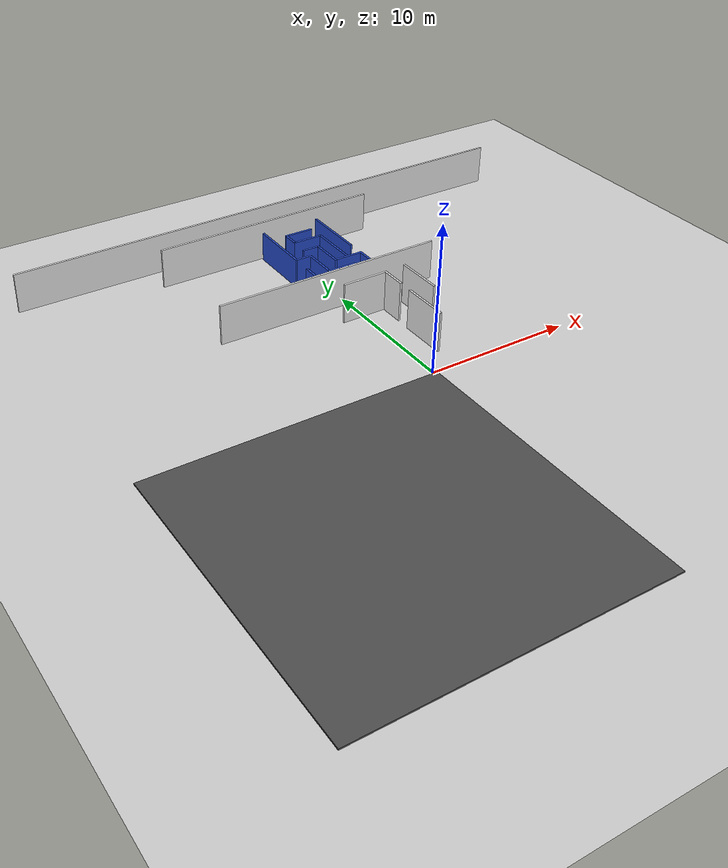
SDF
<sdf version="1.7">
 <world name="default">
  <model name="ground_plane">
   <static>1</static>
   <link name="link">
    <collision name="collision">
     <geometry><plane><normal>0 0 1</normal><size>100 100</size></plane></geometry>
     <surface><friction><ode><mu>100</mu><mu2>50</mu2></ode></friction></surface>
    </collision>
    <visual name="visual">
     <cast_shadows>0</cast_shadows>
     <geometry><plane><normal>0 0 1</normal><size>100 100</size></plane></geometry>
     <material>
      <script><uri>file://media/materials/scripts/gazebo.material</uri><name>Gazebo/Grey</name></script>
     </material>
    </visual>
    <velocity_decay><linear>0</linear><angular>0</angular></velocity_decay>
   </link>
  </model>
  <model name="asphalt_plane">
   <static>1</static>
   <link name="link">
    <collision name="collision"><geometry><box><size>20 20 0.1</size></box></geometry></collision>
    <visual name="visual">
     <cast_shadows>0</cast_shadows>
     <geometry><box><size>20 20 0.1</size></box></geometry>
     <material>
      <script>
       <uri>model://asphalt_plane/materials/scripts</uri>
       <uri>model://asphalt_plane/materials/textures</uri>
       <name>vrc/asphalt</name>
      </script>
     </material>
    </visual>
   </link>
   <pose>-9.73878 -10.1135 0 0 -0 0</pose>
  </model>
  <model name="white_wall_outside">
   <link name="link">
    <inertial>
     <mass>1</mass>
     <inertia>
      <ixx>0.166667</ixx>
      <ixy>0</ixy>
      <ixz>0</ixz>
      <iyy>0.166667</iyy>
      <iyz>0</iyz>
      <izz>0.166667</izz>
     </inertia>
    </inertial>
    <visual name="visual">
     <geometry><box><size>37.6355 0.139088 2.78993</size></box></geometry>
     <material>
      <script><name>Gazebo/White</name><uri>file://media/materials/scripts/gazebo.material</uri></script>
      <shader type="vertex"><normal_map>__default__</normal_map></shader>
      <ambient>1 1 1 1</ambient>
      <diffuse>1 1 1 1</diffuse>
      <specular>0 0 0 1</specular>
      <emissive>0 0 0 1</emissive>
     </material>
    </visual>
    <collision name="collision">
     <geometry><box><size>37.6355 0.139088 2.78993</size></box></geometry>
     <surface>
      <friction>
       <ode><mu>1</mu><mu2>1</mu2><fdir1>0 0 0</fdir1><slip1>0</slip1><slip2>0</slip2></ode>
       <torsional>
        <coefficient>1</coefficient>
        <patch_radius>0</patch_radius>
        <surface_radius>0</surface_radius>
        <use_patch_radius>1</use_patch_radius>
        <ode><slip>0</slip></ode>
       </torsional>
      </friction>
      <bounce><restitution_coefficient>0</restitution_coefficient><threshold>1e+06</threshold></bounce>
      <contact>
       <collide_without_contact>0</collide_without_contact>
       <collide_without_contact_bitmask>1</collide_without_contact_bitmask>
       <collide_bitmask>1</collide_bitmask>
       <ode>
        <soft_cfm>0</soft_cfm>
        <soft_erp>0.2</soft_erp>
        <kp>1e+13</kp>
        <kd>1</kd>
        <max_vel>0.01</max_vel>
        <min_depth>0</min_depth>
       </ode>
       <bullet>
        <split_impulse>1</split_impulse>
        <split_impulse_penetration_threshold>-0.01</split_impulse_penetration_threshold>
        <soft_cfm>0</soft_cfm>
        <soft_erp>0.2</soft_erp>
        <kp>1e+13</kp>
        <kd>1</kd>
       </bullet>
      </contact>
     </surface>
    </collision>
   </link>
   <static>1</static>
   <pose>0.019671 19.5408 1.44001 -1e-06 4e-06 -1.6e-05</pose>
  </model>
  <model name="white_wall17_clone_clone">
   <link name="link">
    <inertial>
     <mass>1</mass>
     <inertia>
      <ixx>0.166667</ixx>
      <ixy>0</ixy>
      <ixz>0</ixz>
      <iyy>0.166667</iyy>
      <iyz>0</iyz>
      <izz>0.166667</izz>
     </inertia>
    </inertial>
    <visual name="visual">
     <geometry><box><size>16.0161 0.139088 2.78993</size></box></geometry>
     <material>
      <script><name>Gazebo/White</name><uri>file://media/materials/scripts/gazebo.material</uri></script>
      <shader type="vertex"><normal_map>__default__</normal_map></shader>
      <ambient>1 1 1 1</ambient>
      <diffuse>1 1 1 1</diffuse>
      <specular>0 0 0 1</specular>
      <emissive>0 0 0 1</emissive>
     </material>
    </visual>
    <collision name="collision">
     <geometry><box><size>16.0161 0.139088 2.78993</size></box></geometry>
     <surface>
      <friction>
       <ode><mu>1</mu><mu2>1</mu2><fdir1>0 0 0</fdir1><slip1>0</slip1><slip2>0</slip2></ode>
       <torsional>
        <coefficient>1</coefficient>
        <patch_radius>0</patch_radius>
        <surface_radius>0</surface_radius>
        <use_patch_radius>1</use_patch_radius>
        <ode><slip>0</slip></ode>
       </torsional>
      </friction>
      <bounce><restitution_coefficient>0</restitution_coefficient><threshold>1e+06</threshold></bounce>
      <contact>
       <collide_without_contact>0</collide_without_contact>
       <collide_without_contact_bitmask>1</collide_without_contact_bitmask>
       <collide_bitmask>1</collide_bitmask>
       <ode>
        <soft_cfm>0</soft_cfm>
        <soft_erp>0.2</soft_erp>
        <kp>1e+13</kp>
        <kd>1</kd>
        <max_vel>0.01</max_vel>
        <min_depth>0</min_depth>
       </ode>
       <bullet>
        <split_impulse>1</split_impulse>
        <split_impulse_penetration_threshold>-0.01</split_impulse_penetration_threshold>
        <soft_cfm>0</soft_cfm>
        <soft_erp>0.2</soft_erp>
        <kp>1e+13</kp>
        <kd>1</kd>
       </bullet>
      </contact>
     </surface>
    </collision>
   </link>
   <static>1</static>
   <pose>-1.34784 17.535 1.43995 -1e-06 4e-06 -1.6e-05</pose>
  </model>
  <model name="white_wall17_clone_clone_clone">
   <link name="link">
    <inertial>
     <mass>1</mass>
     <inertia>
      <ixx>0.166667</ixx>
      <ixy>0</ixy>
      <ixz>0</ixz>
      <iyy>0.166667</iyy>
      <iyz>0</iyz>
      <izz>0.166667</izz>
     </inertia>
    </inertial>
    <visual name="visual">
     <geometry><box><size>16.0161 0.139088 2.78993</size></box></geometry>
     <material>
      <script><name>Gazebo/White</name><uri>file://media/materials/scripts/gazebo.material</uri></script>
      <shader type="vertex"><normal_map>__default__</normal_map></shader>
      <ambient>1 1 1 1</ambient>
      <diffuse>1 1 1 1</diffuse>
      <specular>0 0 0 1</specular>
      <emissive>0 0 0 1</emissive>
     </material>
    </visual>
    <collision name="collision">
     <geometry><box><size>16.0161 0.139088 2.78993</size></box></geometry>
     <surface>
      <friction>
       <ode><mu>1</mu><mu2>1</mu2><fdir1>0 0 0</fdir1><slip1>0</slip1><slip2>0</slip2></ode>
       <torsional>
        <coefficient>1</coefficient>
        <patch_radius>0</patch_radius>
        <surface_radius>0</surface_radius>
        <use_patch_radius>1</use_patch_radius>
        <ode><slip>0</slip></ode>
       </torsional>
      </friction>
      <bounce><restitution_coefficient>0</restitution_coefficient><threshold>1e+06</threshold></bounce>
      <contact>
       <collide_without_contact>0</collide_without_contact>
       <collide_without_contact_bitmask>1</collide_without_contact_bitmask>
       <collide_bitmask>1</collide_bitmask>
       <ode>
        <soft_cfm>0</soft_cfm>
        <soft_erp>0.2</soft_erp>
        <kp>1e+13</kp>
        <kd>1</kd>
        <max_vel>0.01</max_vel>
        <min_depth>0</min_depth>
       </ode>
       <bullet>
        <split_impulse>1</split_impulse>
        <split_impulse_penetration_threshold>-0.01</split_impulse_penetration_threshold>
        <soft_cfm>0</soft_cfm>
        <soft_erp>0.2</soft_erp>
        <kp>1e+13</kp>
        <kd>1</kd>
       </bullet>
      </contact>
     </surface>
    </collision>
   </link>
   <static>1</static>
   <pose>-1.39522 9.32901 1.43995 -1e-06 4e-06 -1.6e-05</pose>
  </model>
  <model name="white_wall2_clone_clone_clone_clone_clone_clone_clone">
   <link name="link">
    <inertial>
     <mass>1</mass>
     <inertia>
      <ixx>0.166667</ixx>
      <ixy>0</ixy>
      <ixz>0</ixz>
      <iyy>0.166667</iyy>
      <iyz>0</iyz>
      <izz>0.166667</izz>
     </inertia>
    </inertial>
    <visual name="visual">
     <geometry><box><size>3.22688 0.139088 2.78993</size></box></geometry>
     <material>
      <script><name>Gazebo/White</name><uri>file://media/materials/scripts/gazebo.material</uri></script>
      <shader type="vertex"><normal_map>__default__</normal_map></shader>
      <ambient>1 1 1 1</ambient>
      <diffuse>1 1 1 1</diffuse>
      <specular>0 0 0 1</specular>
      <emissive>0 0 0 1</emissive>
     </material>
    </visual>
    <collision name="collision">
     <geometry><box><size>3.22688 0.139088 2.78993</size></box></geometry>
     <surface>
      <friction>
       <ode><mu>1</mu><mu2>1</mu2><fdir1>0 0 0</fdir1><slip1>0</slip1><slip2>0</slip2></ode>
       <torsional>
        <coefficient>1</coefficient>
        <patch_radius>0</patch_radius>
        <surface_radius>0</surface_radius>
        <use_patch_radius>1</use_patch_radius>
        <ode><slip>0</slip></ode>
       </torsional>
      </friction>
      <bounce><restitution_coefficient>0</restitution_coefficient><threshold>1e+06</threshold></bounce>
      <contact>
       <collide_without_contact>0</collide_without_contact>
       <collide_without_contact_bitmask>1</collide_without_contact_bitmask>
       <collide_bitmask>1</collide_bitmask>
       <ode>
        <soft_cfm>0</soft_cfm>
        <soft_erp>0.2</soft_erp>
        <kp>1e+13</kp>
        <kd>1</kd>
        <max_vel>0.01</max_vel>
        <min_depth>0</min_depth>
       </ode>
       <bullet>
        <split_impulse>1</split_impulse>
        <split_impulse_penetration_threshold>-0.01</split_impulse_penetration_threshold>
        <soft_cfm>0</soft_cfm>
        <soft_erp>0.2</soft_erp>
        <kp>1e+13</kp>
        <kd>1</kd>
       </bullet>
      </contact>
     </surface>
    </collision>
   </link>
   <static>1</static>
   <pose>0.098009 7.51806 1.43995 -1e-06 4e-06 0.004652</pose>
  </model>
  <model name="white_wall3_clone_clone_2_clone_clone_clone">
   <link name="link">
    <inertial>
     <mass>1</mass>
     <inertia>
      <ixx>0.166667</ixx>
      <ixy>0</ixy>
      <ixz>0</ixz>
      <iyy>0.166667</iyy>
      <iyz>0</iyz>
      <izz>0.166667</izz>
     </inertia>
    </inertial>
    <visual name="visual">
     <geometry><box><size>1.77743 0.139088 2.78993</size></box></geometry>
     <material>
      <script><name>Gazebo/White</name><uri>file://media/materials/scripts/gazebo.material</uri></script>
      <shader type="vertex"><normal_map>__default__</normal_map></shader>
      <ambient>1 1 1 1</ambient>
      <diffuse>1 1 1 1</diffuse>
      <specular>0 0 0 1</specular>
      <emissive>0 0 0 1</emissive>
     </material>
    </visual>
    <collision name="collision">
     <geometry><box><size>1.77743 0.139088 2.78993</size></box></geometry>
     <surface>
      <friction>
       <ode><mu>1</mu><mu2>1</mu2><fdir1>0 0 0</fdir1><slip1>0</slip1><slip2>0</slip2></ode>
       <torsional>
        <coefficient>1</coefficient>
        <patch_radius>0</patch_radius>
        <surface_radius>0</surface_radius>
        <use_patch_radius>1</use_patch_radius>
        <ode><slip>0</slip></ode>
       </torsional>
      </friction>
      <bounce><restitution_coefficient>0</restitution_coefficient><threshold>1e+06</threshold></bounce>
      <contact>
       <collide_without_contact>0</collide_without_contact>
       <collide_without_contact_bitmask>1</collide_without_contact_bitmask>
       <collide_bitmask>1</collide_bitmask>
       <ode>
        <soft_cfm>0</soft_cfm>
        <soft_erp>0.2</soft_erp>
        <kp>1e+13</kp>
        <kd>1</kd>
        <max_vel>0.01</max_vel>
        <min_depth>0</min_depth>
       </ode>
       <bullet>
        <split_impulse>1</split_impulse>
        <split_impulse_penetration_threshold>-0.01</split_impulse_penetration_threshold>
        <soft_cfm>0</soft_cfm>
        <soft_erp>0.2</soft_erp>
        <kp>1e+13</kp>
        <kd>1</kd>
       </bullet>
      </contact>
     </surface>
    </collision>
   </link>
   <static>1</static>
   <pose>1.65799 6.7128 1.43995 4e-06 1e-06 1.56402</pose>
  </model>
  <model name="white_wall2_clone_clone_clone_clone_0">
   <link name="link">
    <inertial>
     <mass>1</mass>
     <inertia>
      <ixx>0.166667</ixx>
      <ixy>0</ixy>
      <ixz>0</ixz>
      <iyy>0.166667</iyy>
      <iyz>0</iyz>
      <izz>0.166667</izz>
     </inertia>
    </inertial>
    <visual name="visual">
     <geometry><box><size>3.22688 0.139088 2.78993</size></box></geometry>
     <material>
      <script><name>Gazebo/White</name><uri>file://media/materials/scripts/gazebo.material</uri></script>
      <shader type="vertex"><normal_map>__default__</normal_map></shader>
      <ambient>1 1 1 1</ambient>
      <diffuse>1 1 1 1</diffuse>
      <specular>0 0 0 1</specular>
      <emissive>0 0 0 1</emissive>
     </material>
    </visual>
    <collision name="collision">
     <geometry><box><size>3.22688 0.139088 2.78993</size></box></geometry>
     <surface>
      <friction>
       <ode><mu>1</mu><mu2>1</mu2><fdir1>0 0 0</fdir1><slip1>0</slip1><slip2>0</slip2></ode>
       <torsional>
        <coefficient>1</coefficient>
        <patch_radius>0</patch_radius>
        <surface_radius>0</surface_radius>
        <use_patch_radius>1</use_patch_radius>
        <ode><slip>0</slip></ode>
       </torsional>
      </friction>
      <bounce><restitution_coefficient>0</restitution_coefficient><threshold>1e+06</threshold></bounce>
      <contact>
       <collide_without_contact>0</collide_without_contact>
       <collide_without_contact_bitmask>1</collide_without_contact_bitmask>
       <collide_bitmask>1</collide_bitmask>
       <ode>
        <soft_cfm>0</soft_cfm>
        <soft_erp>0.2</soft_erp>
        <kp>1e+13</kp>
        <kd>1</kd>
        <max_vel>0.01</max_vel>
        <min_depth>0</min_depth>
       </ode>
       <bullet>
        <split_impulse>1</split_impulse>
        <split_impulse_penetration_threshold>-0.01</split_impulse_penetration_threshold>
        <soft_cfm>0</soft_cfm>
        <soft_erp>0.2</soft_erp>
        <kp>1e+13</kp>
        <kd>1</kd>
       </bullet>
      </contact>
     </surface>
    </collision>
   </link>
   <static>1</static>
   <pose>1.63251 3.24781 1.43995 4e-06 1e-06 1.57814</pose>
  </model>
  <model name="white_wall2_clone_clone_clone_clone_0_clone">
   <link name="link">
    <inertial>
     <mass>1</mass>
     <inertia>
      <ixx>0.166667</ixx>
      <ixy>0</ixy>
      <ixz>0</ixz>
      <iyy>0.166667</iyy>
      <iyz>0</iyz>
      <izz>0.166667</izz>
     </inertia>
    </inertial>
    <visual name="visual">
     <geometry><box><size>3.22688 0.139088 2.78993</size></box></geometry>
     <material>
      <script><name>Gazebo/White</name><uri>file://media/materials/scripts/gazebo.material</uri></script>
      <shader type="vertex"><normal_map>__default__</normal_map></shader>
      <ambient>1 1 1 1</ambient>
      <diffuse>1 1 1 1</diffuse>
      <specular>0 0 0 1</specular>
      <emissive>0 0 0 1</emissive>
     </material>
    </visual>
    <collision name="collision">
     <geometry><box><size>3.22688 0.139088 2.78993</size></box></geometry>
     <surface>
      <friction>
       <ode><mu>1</mu><mu2>1</mu2><fdir1>0 0 0</fdir1><slip1>0</slip1><slip2>0</slip2></ode>
       <torsional>
        <coefficient>1</coefficient>
        <patch_radius>0</patch_radius>
        <surface_radius>0</surface_radius>
        <use_patch_radius>1</use_patch_radius>
        <ode><slip>0</slip></ode>
       </torsional>
      </friction>
      <bounce><restitution_coefficient>0</restitution_coefficient><threshold>1e+06</threshold></bounce>
      <contact>
       <collide_without_contact>0</collide_without_contact>
       <collide_without_contact_bitmask>1</collide_without_contact_bitmask>
       <collide_bitmask>1</collide_bitmask>
       <ode>
        <soft_cfm>0</soft_cfm>
        <soft_erp>0.2</soft_erp>
        <kp>1e+13</kp>
        <kd>1</kd>
        <max_vel>0.01</max_vel>
        <min_depth>0</min_depth>
       </ode>
       <bullet>
        <split_impulse>1</split_impulse>
        <split_impulse_penetration_threshold>-0.01</split_impulse_penetration_threshold>
        <soft_cfm>0</soft_cfm>
        <soft_erp>0.2</soft_erp>
        <kp>1e+13</kp>
        <kd>1</kd>
       </bullet>
      </contact>
     </surface>
    </collision>
   </link>
   <static>1</static>
   <pose>3.21284 6.04856 1.43995 4e-06 1e-06 1.57814</pose>
  </model>
  <model name="blue_wall_10">
   <link name="link">
    <inertial>
     <mass>1.23974</mass>
     <inertia>
      <ixx>1.75708</ixx>
      <ixy>0</ixy>
      <ixz>0</ixz>
      <iyy>0.935051</iyy>
      <iyz>0</iyz>
      <izz>0.826375</izz>
     </inertia>
    </inertial>
    <visual name="visual">
     <geometry><box><size>0.145074 1.16671 3.00495</size></box></geometry>
     <material>
      <script><name>Gazebo/Blue</name><uri>file://media/materials/scripts/gazebo.material</uri></script>
      <shader type="vertex"><normal_map>__default__</normal_map></shader>
      <ambient>0 0 1 1</ambient>
      <diffuse>0 0 1 1</diffuse>
      <specular>0.1 0.1 0.1 1</specular>
      <emissive>0 0 0 1</emissive>
     </material>
    </visual>
    <collision name="collision">
     <geometry><box><size>0.145074 1.16671 3.00495</size></box></geometry>
     <surface>
      <friction>
       <ode><mu>1</mu><mu2>1</mu2><fdir1>0 0 0</fdir1><slip1>0</slip1><slip2>0</slip2></ode>
       <torsional>
        <coefficient>1</coefficient>
        <patch_radius>0</patch_radius>
        <surface_radius>0</surface_radius>
        <use_patch_radius>1</use_patch_radius>
        <ode><slip>0</slip></ode>
       </torsional>
      </friction>
      <bounce><restitution_coefficient>0</restitution_coefficient><threshold>1e+06</threshold></bounce>
      <contact>
       <collide_without_contact>0</collide_without_contact>
       <collide_without_contact_bitmask>1</collide_without_contact_bitmask>
       <collide_bitmask>1</collide_bitmask>
       <ode>
        <soft_cfm>0</soft_cfm>
        <soft_erp>0.2</soft_erp>
        <kp>1e+13</kp>
        <kd>1</kd>
        <max_vel>0.01</max_vel>
        <min_depth>0</min_depth>
       </ode>
       <bullet>
        <split_impulse>1</split_impulse>
        <split_impulse_penetration_threshold>-0.01</split_impulse_penetration_threshold>
        <soft_cfm>0</soft_cfm>
        <soft_erp>0.2</soft_erp>
        <kp>1e+13</kp>
        <kd>1</kd>
       </bullet>
      </contact>
     </surface>
    </collision>
   </link>
   <static>1</static>
   <pose>-1.67359 11.1473 0.5 0 0 -0.002745</pose>
  </model>
  <model name="blue_wall_13">
   <link name="link">
    <inertial>
     <mass>1.23974</mass>
     <inertia>
      <ixx>1.75708</ixx>
      <ixy>0</ixy>
      <ixz>0</ixz>
      <iyy>0.935051</iyy>
      <iyz>0</iyz>
      <izz>0.826375</izz>
     </inertia>
    </inertial>
    <visual name="visual">
     <geometry><box><size>0.145074 4.47014 3.00495</size></box></geometry>
     <material>
      <script><name>Gazebo/Blue</name><uri>file://media/materials/scripts/gazebo.material</uri></script>
      <shader type="vertex"><normal_map>__default__</normal_map></shader>
      <ambient>0 0 1 1</ambient>
      <diffuse>0 0 1 1</diffuse>
      <specular>0.1 0.1 0.1 1</specular>
      <emissive>0 0 0 1</emissive>
     </material>
    </visual>
    <collision name="collision">
     <geometry><box><size>0.145074 4.47014 3.00495</size></box></geometry>
     <surface>
      <friction>
       <ode><mu>1</mu><mu2>1</mu2><fdir1>0 0 0</fdir1><slip1>0</slip1><slip2>0</slip2></ode>
       <torsional>
        <coefficient>1</coefficient>
        <patch_radius>0</patch_radius>
        <surface_radius>0</surface_radius>
        <use_patch_radius>1</use_patch_radius>
        <ode><slip>0</slip></ode>
       </torsional>
      </friction>
      <bounce><restitution_coefficient>0</restitution_coefficient><threshold>1e+06</threshold></bounce>
      <contact>
       <collide_without_contact>0</collide_without_contact>
       <collide_without_contact_bitmask>1</collide_without_contact_bitmask>
       <collide_bitmask>1</collide_bitmask>
       <ode>
        <soft_cfm>0</soft_cfm>
        <soft_erp>0.2</soft_erp>
        <kp>1e+13</kp>
        <kd>1</kd>
        <max_vel>0.01</max_vel>
        <min_depth>0</min_depth>
       </ode>
       <bullet>
        <split_impulse>1</split_impulse>
        <split_impulse_penetration_threshold>-0.01</split_impulse_penetration_threshold>
        <soft_cfm>0</soft_cfm>
        <soft_erp>0.2</soft_erp>
        <kp>1e+13</kp>
        <kd>1</kd>
       </bullet>
      </contact>
     </surface>
    </collision>
   </link>
   <static>1</static>
   <pose>-1.64603 15.2527 0.5 0 -0 0</pose>
  </model>
  <model name="blue_wall_3_clone_0_clone_clone">
   <link name="link">
    <inertial>
     <mass>1.23974</mass>
     <inertia>
      <ixx>1.75708</ixx>
      <ixy>0</ixy>
      <ixz>0</ixz>
      <iyy>0.935051</iyy>
      <iyz>0</iyz>
      <izz>0.826375</izz>
     </inertia>
    </inertial>
    <visual name="visual">
     <geometry><box><size>0.145074 1.16671 3.00495</size></box></geometry>
     <material>
      <script><name>Gazebo/Blue</name><uri>file://media/materials/scripts/gazebo.material</uri></script>
      <shader type="vertex"><normal_map>__default__</normal_map></shader>
      <ambient>0 0 1 1</ambient>
      <diffuse>0 0 1 1</diffuse>
      <specular>0.1 0.1 0.1 1</specular>
      <emissive>0 0 0 1</emissive>
     </material>
    </visual>
    <collision name="collision">
     <geometry><box><size>0.145074 1.16671 3.00495</size></box></geometry>
     <surface>
      <friction>
       <ode><mu>1</mu><mu2>1</mu2><fdir1>0 0 0</fdir1><slip1>0</slip1><slip2>0</slip2></ode>
       <torsional>
        <coefficient>1</coefficient>
        <patch_radius>0</patch_radius>
        <surface_radius>0</surface_radius>
        <use_patch_radius>1</use_patch_radius>
        <ode><slip>0</slip></ode>
       </torsional>
      </friction>
      <bounce><restitution_coefficient>0</restitution_coefficient><threshold>1e+06</threshold></bounce>
      <contact>
       <collide_without_contact>0</collide_without_contact>
       <collide_without_contact_bitmask>1</collide_without_contact_bitmask>
       <collide_bitmask>1</collide_bitmask>
       <ode>
        <soft_cfm>0</soft_cfm>
        <soft_erp>0.2</soft_erp>
        <kp>1e+13</kp>
        <kd>1</kd>
        <max_vel>0.01</max_vel>
        <min_depth>0</min_depth>
       </ode>
       <bullet>
        <split_impulse>1</split_impulse>
        <split_impulse_penetration_threshold>-0.01</split_impulse_penetration_threshold>
        <soft_cfm>0</soft_cfm>
        <soft_erp>0.2</soft_erp>
        <kp>1e+13</kp>
        <kd>1</kd>
       </bullet>
      </contact>
     </surface>
    </collision>
   </link>
   <static>1</static>
   <pose>-1.06214 13.072 0.5 0 -0 1.54108</pose>
  </model>
  <model name="blue_wall_2_0_clone_0_clone_clone_clone">
   <link name="link">
    <inertial>
     <mass>1.23974</mass>
     <inertia>
      <ixx>1.75708</ixx>
      <ixy>0</ixy>
      <ixz>0</ixz>
      <iyy>0.935051</iyy>
      <iyz>0</iyz>
      <izz>0.826375</izz>
     </inertia>
    </inertial>
    <visual name="visual">
     <geometry><box><size>0.145074 2.28839 3.00495</size></box></geometry>
     <material>
      <script><name>Gazebo/Blue</name><uri>file://media/materials/scripts/gazebo.material</uri></script>
      <shader type="vertex"><normal_map>__default__</normal_map></shader>
      <ambient>0 0 1 1</ambient>
      <diffuse>0 0 1 1</diffuse>
      <specular>0.1 0.1 0.1 1</specular>
      <emissive>0 0 0 1</emissive>
     </material>
    </visual>
    <collision name="collision">
     <geometry><box><size>0.145074 2.28839 3.00495</size></box></geometry>
     <surface>
      <friction>
       <ode><mu>1</mu><mu2>1</mu2><fdir1>0 0 0</fdir1><slip1>0</slip1><slip2>0</slip2></ode>
       <torsional>
        <coefficient>1</coefficient>
        <patch_radius>0</patch_radius>
        <surface_radius>0</surface_radius>
        <use_patch_radius>1</use_patch_radius>
        <ode><slip>0</slip></ode>
       </torsional>
      </friction>
      <bounce><restitution_coefficient>0</restitution_coefficient><threshold>1e+06</threshold></bounce>
      <contact>
       <collide_without_contact>0</collide_without_contact>
       <collide_without_contact_bitmask>1</collide_without_contact_bitmask>
       <collide_bitmask>1</collide_bitmask>
       <ode>
        <soft_cfm>0</soft_cfm>
        <soft_erp>0.2</soft_erp>
        <kp>1e+13</kp>
        <kd>1</kd>
        <max_vel>0.01</max_vel>
        <min_depth>0</min_depth>
       </ode>
       <bullet>
        <split_impulse>1</split_impulse>
        <split_impulse_penetration_threshold>-0.01</split_impulse_penetration_threshold>
        <soft_cfm>0</soft_cfm>
        <soft_erp>0.2</soft_erp>
        <kp>1e+13</kp>
        <kd>1</kd>
       </bullet>
      </contact>
     </surface>
    </collision>
   </link>
   <static>1</static>
   <pose>-0.562879 11.8752 0.5 0 -0 0</pose>
  </model>
  <model name="blue_wall_9_clone_clone">
   <link name="link">
    <inertial>
     <mass>1.23974</mass>
     <inertia>
      <ixx>1.75708</ixx>
      <ixy>0</ixy>
      <ixz>0</ixz>
      <iyy>0.935051</iyy>
      <iyz>0</iyz>
      <izz>0.826375</izz>
     </inertia>
    </inertial>
    <visual name="visual">
     <geometry><box><size>0.145074 2.05737 3.00495</size></box></geometry>
     <material>
      <script><name>Gazebo/Blue</name><uri>file://media/materials/scripts/gazebo.material</uri></script>
      <shader type="vertex"><normal_map>__default__</normal_map></shader>
      <ambient>0 0 1 1</ambient>
      <diffuse>0 0 1 1</diffuse>
      <specular>0.1 0.1 0.1 1</specular>
      <emissive>0 0 0 1</emissive>
     </material>
    </visual>
    <collision name="collision">
     <geometry><box><size>0.145074 2.05737 3.00495</size></box></geometry>
     <surface>
      <friction>
       <ode><mu>1</mu><mu2>1</mu2><fdir1>0 0 0</fdir1><slip1>0</slip1><slip2>0</slip2></ode>
       <torsional>
        <coefficient>1</coefficient>
        <patch_radius>0</patch_radius>
        <surface_radius>0</surface_radius>
        <use_patch_radius>1</use_patch_radius>
        <ode><slip>0</slip></ode>
       </torsional>
      </friction>
      <bounce><restitution_coefficient>0</restitution_coefficient><threshold>1e+06</threshold></bounce>
      <contact>
       <collide_without_contact>0</collide_without_contact>
       <collide_without_contact_bitmask>1</collide_without_contact_bitmask>
       <collide_bitmask>1</collide_bitmask>
       <ode>
        <soft_cfm>0</soft_cfm>
        <soft_erp>0.2</soft_erp>
        <kp>1e+13</kp>
        <kd>1</kd>
        <max_vel>0.01</max_vel>
        <min_depth>0</min_depth>
       </ode>
       <bullet>
        <split_impulse>1</split_impulse>
        <split_impulse_penetration_threshold>-0.01</split_impulse_penetration_threshold>
        <soft_cfm>0</soft_cfm>
        <soft_erp>0.2</soft_erp>
        <kp>1e+13</kp>
        <kd>1</kd>
       </bullet>
      </contact>
     </surface>
    </collision>
   </link>
   <static>1</static>
   <pose>0.387351 10.705 0.5 0 -0 1.55679</pose>
  </model>
  <model name="blue_wall_2_0_clone_0_clone_clone_clone_clone">
   <link name="link">
    <inertial>
     <mass>1.23974</mass>
     <inertia>
      <ixx>1.75708</ixx>
      <ixy>0</ixy>
      <ixz>0</ixz>
      <iyy>0.935051</iyy>
      <iyz>0</iyz>
      <izz>0.826375</izz>
     </inertia>
    </inertial>
    <visual name="visual">
     <geometry><box><size>0.145074 2.28839 3.00495</size></box></geometry>
     <material>
      <script><name>Gazebo/Blue</name><uri>file://media/materials/scripts/gazebo.material</uri></script>
      <shader type="vertex"><normal_map>__default__</normal_map></shader>
      <ambient>0 0 1 1</ambient>
      <diffuse>0 0 1 1</diffuse>
      <specular>0.1 0.1 0.1 1</specular>
      <emissive>0 0 0 1</emissive>
     </material>
    </visual>
    <collision name="collision">
     <geometry><box><size>0.145074 2.28839 3.00495</size></box></geometry>
     <surface>
      <friction>
       <ode><mu>1</mu><mu2>1</mu2><fdir1>0 0 0</fdir1><slip1>0</slip1><slip2>0</slip2></ode>
       <torsional>
        <coefficient>1</coefficient>
        <patch_radius>0</patch_radius>
        <surface_radius>0</surface_radius>
        <use_patch_radius>1</use_patch_radius>
        <ode><slip>0</slip></ode>
       </torsional>
      </friction>
      <bounce><restitution_coefficient>0</restitution_coefficient><threshold>1e+06</threshold></bounce>
      <contact>
       <collide_without_contact>0</collide_without_contact>
       <collide_without_contact_bitmask>1</collide_without_contact_bitmask>
       <collide_bitmask>1</collide_bitmask>
       <ode>
        <soft_cfm>0</soft_cfm>
        <soft_erp>0.2</soft_erp>
        <kp>1e+13</kp>
        <kd>1</kd>
        <max_vel>0.01</max_vel>
        <min_depth>0</min_depth>
       </ode>
       <bullet>
        <split_impulse>1</split_impulse>
        <split_impulse_penetration_threshold>-0.01</split_impulse_penetration_threshold>
        <soft_cfm>0</soft_cfm>
        <soft_erp>0.2</soft_erp>
        <kp>1e+13</kp>
        <kd>1</kd>
       </bullet>
      </contact>
     </surface>
    </collision>
   </link>
   <static>1</static>
   <pose>2.58667 10.5444 0.5 0 -0 0</pose>
  </model>
  <model name="blue_wall_9_clone_clone_clone">
   <link name="link">
    <inertial>
     <mass>1.23974</mass>
     <inertia>
      <ixx>1.75708</ixx>
      <ixy>0</ixy>
      <ixz>0</ixz>
      <iyy>0.935051</iyy>
      <iyz>0</iyz>
      <izz>0.826375</izz>
     </inertia>
    </inertial>
    <visual name="visual">
     <geometry><box><size>0.145074 2.05737 3.00495</size></box></geometry>
     <material>
      <script><name>Gazebo/Blue</name><uri>file://media/materials/scripts/gazebo.material</uri></script>
      <shader type="vertex"><normal_map>__default__</normal_map></shader>
      <ambient>0 0 1 1</ambient>
      <diffuse>0 0 1 1</diffuse>
      <specular>0.1 0.1 0.1 1</specular>
      <emissive>0 0 0 1</emissive>
     </material>
    </visual>
    <collision name="collision">
     <geometry><box><size>0.145074 2.05737 3.00495</size></box></geometry>
     <surface>
      <friction>
       <ode><mu>1</mu><mu2>1</mu2><fdir1>0 0 0</fdir1><slip1>0</slip1><slip2>0</slip2></ode>
       <torsional>
        <coefficient>1</coefficient>
        <patch_radius>0</patch_radius>
        <surface_radius>0</surface_radius>
        <use_patch_radius>1</use_patch_radius>
        <ode><slip>0</slip></ode>
       </torsional>
      </friction>
      <bounce><restitution_coefficient>0</restitution_coefficient><threshold>1e+06</threshold></bounce>
      <contact>
       <collide_without_contact>0</collide_without_contact>
       <collide_without_contact_bitmask>1</collide_without_contact_bitmask>
       <collide_bitmask>1</collide_bitmask>
       <ode>
        <soft_cfm>0</soft_cfm>
        <soft_erp>0.2</soft_erp>
        <kp>1e+13</kp>
        <kd>1</kd>
        <max_vel>0.01</max_vel>
        <min_depth>0</min_depth>
       </ode>
       <bullet>
        <split_impulse>1</split_impulse>
        <split_impulse_penetration_threshold>-0.01</split_impulse_penetration_threshold>
        <soft_cfm>0</soft_cfm>
        <soft_erp>0.2</soft_erp>
        <kp>1e+13</kp>
        <kd>1</kd>
       </bullet>
      </contact>
     </surface>
    </collision>
   </link>
   <static>1</static>
   <pose>1.62666 11.7522 0.5 0 -0 1.55679</pose>
  </model>
  <model name="blue_wall_2_0_clone_0_clone_clone_clone_clone_0">
   <link name="link">
    <inertial>
     <mass>1.23974</mass>
     <inertia>
      <ixx>1.75708</ixx>
      <ixy>0</ixy>
      <ixz>0</ixz>
      <iyy>0.935051</iyy>
      <iyz>0</iyz>
      <izz>0.826375</izz>
     </inertia>
    </inertial>
    <visual name="visual">
     <geometry><box><size>0.145074 2.28839 3.00495</size></box></geometry>
     <material>
      <script><name>Gazebo/Blue</name><uri>file://media/materials/scripts/gazebo.material</uri></script>
      <shader type="vertex"><normal_map>__default__</normal_map></shader>
      <ambient>0 0 1 1</ambient>
      <diffuse>0 0 1 1</diffuse>
      <specular>0.1 0.1 0.1 1</specular>
      <emissive>0 0 0 1</emissive>
     </material>
    </visual>
    <collision name="collision">
     <geometry><box><size>0.145074 2.28839 3.00495</size></box></geometry>
     <surface>
      <friction>
       <ode><mu>1</mu><mu2>1</mu2><fdir1>0 0 0</fdir1><slip1>0</slip1><slip2>0</slip2></ode>
       <torsional>
        <coefficient>1</coefficient>
        <patch_radius>0</patch_radius>
        <surface_radius>0</surface_radius>
        <use_patch_radius>1</use_patch_radius>
        <ode><slip>0</slip></ode>
       </torsional>
      </friction>
      <bounce><restitution_coefficient>0</restitution_coefficient><threshold>1e+06</threshold></bounce>
      <contact>
       <collide_without_contact>0</collide_without_contact>
       <collide_without_contact_bitmask>1</collide_without_contact_bitmask>
       <collide_bitmask>1</collide_bitmask>
       <ode>
        <soft_cfm>0</soft_cfm>
        <soft_erp>0.2</soft_erp>
        <kp>1e+13</kp>
        <kd>1</kd>
        <max_vel>0.01</max_vel>
        <min_depth>0</min_depth>
       </ode>
       <bullet>
        <split_impulse>1</split_impulse>
        <split_impulse_penetration_threshold>-0.01</split_impulse_penetration_threshold>
        <soft_cfm>0</soft_cfm>
        <soft_erp>0.2</soft_erp>
        <kp>1e+13</kp>
        <kd>1</kd>
       </bullet>
      </contact>
     </surface>
    </collision>
   </link>
   <static>1</static>
   <pose>0.583148 12.8253 0.5 0 -0 0</pose>
  </model>
  <model name="blue_wall_3_clone_0_clone_clone_clone">
   <link name="link">
    <inertial>
     <mass>1.23974</mass>
     <inertia>
      <ixx>1.75708</ixx>
      <ixy>0</ixy>
      <ixz>0</ixz>
      <iyy>0.935051</iyy>
      <iyz>0</iyz>
      <izz>0.826375</izz>
     </inertia>
    </inertial>
    <visual name="visual">
     <geometry><box><size>0.145074 1.16671 3.00495</size></box></geometry>
     <material>
      <script><name>Gazebo/Blue</name><uri>file://media/materials/scripts/gazebo.material</uri></script>
      <shader type="vertex"><normal_map>__default__</normal_map></shader>
      <ambient>0 0 1 1</ambient>
      <diffuse>0 0 1 1</diffuse>
      <specular>0.1 0.1 0.1 1</specular>
      <emissive>0 0 0 1</emissive>
     </material>
    </visual>
    <collision name="collision">
     <geometry><box><size>0.145074 1.16671 3.00495</size></box></geometry>
     <surface>
      <friction>
       <ode><mu>1</mu><mu2>1</mu2><fdir1>0 0 0</fdir1><slip1>0</slip1><slip2>0</slip2></ode>
       <torsional>
        <coefficient>1</coefficient>
        <patch_radius>0</patch_radius>
        <surface_radius>0</surface_radius>
        <use_patch_radius>1</use_patch_radius>
        <ode><slip>0</slip></ode>
       </torsional>
      </friction>
      <bounce><restitution_coefficient>0</restitution_coefficient><threshold>1e+06</threshold></bounce>
      <contact>
       <collide_without_contact>0</collide_without_contact>
       <collide_without_contact_bitmask>1</collide_without_contact_bitmask>
       <collide_bitmask>1</collide_bitmask>
       <ode>
        <soft_cfm>0</soft_cfm>
        <soft_erp>0.2</soft_erp>
        <kp>1e+13</kp>
        <kd>1</kd>
        <max_vel>0.01</max_vel>
        <min_depth>0</min_depth>
       </ode>
       <bullet>
        <split_impulse>1</split_impulse>
        <split_impulse_penetration_threshold>-0.01</split_impulse_penetration_threshold>
        <soft_cfm>0</soft_cfm>
        <soft_erp>0.2</soft_erp>
        <kp>1e+13</kp>
        <kd>1</kd>
       </bullet>
      </contact>
     </surface>
    </collision>
   </link>
   <static>1</static>
   <pose>0.005174 13.9327 0.5 0 -0 1.54108</pose>
  </model>
  <model name="blue_wall_10_clone">
   <link name="link">
    <inertial>
     <mass>1.23974</mass>
     <inertia>
      <ixx>1.75708</ixx>
      <ixy>0</ixy>
      <ixz>0</ixz>
      <iyy>0.935051</iyy>
      <iyz>0</iyz>
      <izz>0.826375</izz>
     </inertia>
    </inertial>
    <visual name="visual">
     <geometry><box><size>0.145074 1.16671 3.00495</size></box></geometry>
     <material>
      <script><name>Gazebo/Blue</name><uri>file://media/materials/scripts/gazebo.material</uri></script>
      <shader type="vertex"><normal_map>__default__</normal_map></shader>
      <ambient>0 0 1 1</ambient>
      <diffuse>0 0 1 1</diffuse>
      <specular>0.1 0.1 0.1 1</specular>
      <emissive>0 0 0 1</emissive>
     </material>
    </visual>
    <collision name="collision">
     <geometry><box><size>0.145074 1.16671 3.00495</size></box></geometry>
     <surface>
      <friction>
       <ode><mu>1</mu><mu2>1</mu2><fdir1>0 0 0</fdir1><slip1>0</slip1><slip2>0</slip2></ode>
       <torsional>
        <coefficient>1</coefficient>
        <patch_radius>0</patch_radius>
        <surface_radius>0</surface_radius>
        <use_patch_radius>1</use_patch_radius>
        <ode><slip>0</slip></ode>
       </torsional>
      </friction>
      <bounce><restitution_coefficient>0</restitution_coefficient><threshold>1e+06</threshold></bounce>
      <contact>
       <collide_without_contact>0</collide_without_contact>
       <collide_without_contact_bitmask>1</collide_without_contact_bitmask>
       <collide_bitmask>1</collide_bitmask>
       <ode>
        <soft_cfm>0</soft_cfm>
        <soft_erp>0.2</soft_erp>
        <kp>1e+13</kp>
        <kd>1</kd>
        <max_vel>0.01</max_vel>
        <min_depth>0</min_depth>
       </ode>
       <bullet>
        <split_impulse>1</split_impulse>
        <split_impulse_penetration_threshold>-0.01</split_impulse_penetration_threshold>
        <soft_cfm>0</soft_cfm>
        <soft_erp>0.2</soft_erp>
        <kp>1e+13</kp>
        <kd>1</kd>
       </bullet>
      </contact>
     </surface>
    </collision>
   </link>
   <static>1</static>
   <pose>-0.498998 15.7102 0.5 0 0 -0.002745</pose>
  </model>
  <model name="blue_wall_9_clone_clone_clone_clone">
   <link name="link">
    <inertial>
     <mass>1.23974</mass>
     <inertia>
      <ixx>1.75708</ixx>
      <ixy>0</ixy>
      <ixz>0</ixz>
      <iyy>0.935051</iyy>
      <iyz>0</iyz>
      <izz>0.826375</izz>
     </inertia>
    </inertial>
    <visual name="visual">
     <geometry><box><size>0.145074 2.05737 3.00495</size></box></geometry>
     <material>
      <script><name>Gazebo/Blue</name><uri>file://media/materials/scripts/gazebo.material</uri></script>
      <shader type="vertex"><normal_map>__default__</normal_map></shader>
      <ambient>0 0 1 1</ambient>
      <diffuse>0 0 1 1</diffuse>
      <specular>0.1 0.1 0.1 1</specular>
      <emissive>0 0 0 1</emissive>
     </material>
    </visual>
    <collision name="collision">
     <geometry><box><size>0.145074 2.05737 3.00495</size></box></geometry>
     <surface>
      <friction>
       <ode><mu>1</mu><mu2>1</mu2><fdir1>0 0 0</fdir1><slip1>0</slip1><slip2>0</slip2></ode>
       <torsional>
        <coefficient>1</coefficient>
        <patch_radius>0</patch_radius>
        <surface_radius>0</surface_radius>
        <use_patch_radius>1</use_patch_radius>
        <ode><slip>0</slip></ode>
       </torsional>
      </friction>
      <bounce><restitution_coefficient>0</restitution_coefficient><threshold>1e+06</threshold></bounce>
      <contact>
       <collide_without_contact>0</collide_without_contact>
       <collide_without_contact_bitmask>1</collide_without_contact_bitmask>
       <collide_bitmask>1</collide_bitmask>
       <ode>
        <soft_cfm>0</soft_cfm>
        <soft_erp>0.2</soft_erp>
        <kp>1e+13</kp>
        <kd>1</kd>
        <max_vel>0.01</max_vel>
        <min_depth>0</min_depth>
       </ode>
       <bullet>
        <split_impulse>1</split_impulse>
        <split_impulse_penetration_threshold>-0.01</split_impulse_penetration_threshold>
        <soft_cfm>0</soft_cfm>
        <soft_erp>0.2</soft_erp>
        <kp>1e+13</kp>
        <kd>1</kd>
       </bullet>
      </contact>
     </surface>
    </collision>
   </link>
   <static>1</static>
   <pose>0.469512 15.1811 0.5 0 -0 1.55679</pose>
  </model>
  <model name="blue_wall_9_clone_clone_clone_clone_0">
   <link name="link">
    <inertial>
     <mass>1.23974</mass>
     <inertia>
      <ixx>1.75708</ixx>
      <ixy>0</ixy>
      <ixz>0</ixz>
      <iyy>0.935051</iyy>
      <iyz>0</iyz>
      <izz>0.826375</izz>
     </inertia>
    </inertial>
    <visual name="visual">
     <geometry><box><size>0.145074 2.05737 3.00495</size></box></geometry>
     <material>
      <script><name>Gazebo/Blue</name><uri>file://media/materials/scripts/gazebo.material</uri></script>
      <shader type="vertex"><normal_map>__default__</normal_map></shader>
      <ambient>0 0 1 1</ambient>
      <diffuse>0 0 1 1</diffuse>
      <specular>0.1 0.1 0.1 1</specular>
      <emissive>0 0 0 1</emissive>
     </material>
    </visual>
    <collision name="collision">
     <geometry><box><size>0.145074 2.05737 3.00495</size></box></geometry>
     <surface>
      <friction>
       <ode><mu>1</mu><mu2>1</mu2><fdir1>0 0 0</fdir1><slip1>0</slip1><slip2>0</slip2></ode>
       <torsional>
        <coefficient>1</coefficient>
        <patch_radius>0</patch_radius>
        <surface_radius>0</surface_radius>
        <use_patch_radius>1</use_patch_radius>
        <ode><slip>0</slip></ode>
       </torsional>
      </friction>
      <bounce><restitution_coefficient>0</restitution_coefficient><threshold>1e+06</threshold></bounce>
      <contact>
       <collide_without_contact>0</collide_without_contact>
       <collide_without_contact_bitmask>1</collide_without_contact_bitmask>
       <collide_bitmask>1</collide_bitmask>
       <ode>
        <soft_cfm>0</soft_cfm>
        <soft_erp>0.2</soft_erp>
        <kp>1e+13</kp>
        <kd>1</kd>
        <max_vel>0.01</max_vel>
        <min_depth>0</min_depth>
       </ode>
       <bullet>
        <split_impulse>1</split_impulse>
        <split_impulse_penetration_threshold>-0.01</split_impulse_penetration_threshold>
        <soft_cfm>0</soft_cfm>
        <soft_erp>0.2</soft_erp>
        <kp>1e+13</kp>
        <kd>1</kd>
       </bullet>
      </contact>
     </surface>
    </collision>
   </link>
   <static>1</static>
   <pose>0.477247 16.293 0.5 0 -0 1.55679</pose>
  </model>
  <model name="blue_wall_11_clone">
   <link name="link">
    <inertial>
     <mass>1.23974</mass>
     <inertia>
      <ixx>1.75708</ixx>
      <ixy>0</ixy>
      <ixz>0</ixz>
      <iyy>0.935051</iyy>
      <iyz>0</iyz>
      <izz>0.826375</izz>
     </inertia>
    </inertial>
    <visual name="visual">
     <geometry><box><size>0.145074 3.48332 3.00495</size></box></geometry>
     <material>
      <script><name>Gazebo/Blue</name><uri>file://media/materials/scripts/gazebo.material</uri></script>
      <shader type="vertex"><normal_map>__default__</normal_map></shader>
      <ambient>0 0 1 1</ambient>
      <diffuse>0 0 1 1</diffuse>
      <specular>0.1 0.1 0.1 1</specular>
      <emissive>0 0 0 1</emissive>
     </material>
    </visual>
    <collision name="collision">
     <geometry><box><size>0.145074 3.48332 3.00495</size></box></geometry>
     <surface>
      <friction>
       <ode><mu>1</mu><mu2>1</mu2><fdir1>0 0 0</fdir1><slip1>0</slip1><slip2>0</slip2></ode>
       <torsional>
        <coefficient>1</coefficient>
        <patch_radius>0</patch_radius>
        <surface_radius>0</surface_radius>
        <use_patch_radius>1</use_patch_radius>
        <ode><slip>0</slip></ode>
       </torsional>
      </friction>
      <bounce><restitution_coefficient>0</restitution_coefficient><threshold>1e+06</threshold></bounce>
      <contact>
       <collide_without_contact>0</collide_without_contact>
       <collide_without_contact_bitmask>1</collide_without_contact_bitmask>
       <collide_bitmask>1</collide_bitmask>
       <ode>
        <soft_cfm>0</soft_cfm>
        <soft_erp>0.2</soft_erp>
        <kp>1e+13</kp>
        <kd>1</kd>
        <max_vel>0.01</max_vel>
        <min_depth>0</min_depth>
       </ode>
       <bullet>
        <split_impulse>1</split_impulse>
        <split_impulse_penetration_threshold>-0.01</split_impulse_penetration_threshold>
        <soft_cfm>0</soft_cfm>
        <soft_erp>0.2</soft_erp>
        <kp>1e+13</kp>
        <kd>1</kd>
       </bullet>
      </contact>
     </surface>
    </collision>
   </link>
   <static>1</static>
   <pose>1.53575 13.4662 0.5 0 -0 0</pose>
  </model>
  <model name="blue_wall_13_clone">
   <link name="link">
    <inertial>
     <mass>1.23974</mass>
     <inertia>
      <ixx>1.75708</ixx>
      <ixy>0</ixy>
      <ixz>0</ixz>
      <iyy>0.935051</iyy>
      <iyz>0</iyz>
      <izz>0.826375</izz>
     </inertia>
    </inertial>
    <visual name="visual">
     <geometry><box><size>0.145074 4.47014 3.00495</size></box></geometry>
     <material>
      <script><name>Gazebo/Blue</name><uri>file://media/materials/scripts/gazebo.material</uri></script>
      <shader type="vertex"><normal_map>__default__</normal_map></shader>
      <ambient>0 0 1 1</ambient>
      <diffuse>0 0 1 1</diffuse>
      <specular>0.1 0.1 0.1 1</specular>
      <emissive>0 0 0 1</emissive>
     </material>
    </visual>
    <collision name="collision">
     <geometry><box><size>0.145074 4.47014 3.00495</size></box></geometry>
     <surface>
      <friction>
       <ode><mu>1</mu><mu2>1</mu2><fdir1>0 0 0</fdir1><slip1>0</slip1><slip2>0</slip2></ode>
       <torsional>
        <coefficient>1</coefficient>
        <patch_radius>0</patch_radius>
        <surface_radius>0</surface_radius>
        <use_patch_radius>1</use_patch_radius>
        <ode><slip>0</slip></ode>
       </torsional>
      </friction>
      <bounce><restitution_coefficient>0</restitution_coefficient><threshold>1e+06</threshold></bounce>
      <contact>
       <collide_without_contact>0</collide_without_contact>
       <collide_without_contact_bitmask>1</collide_without_contact_bitmask>
       <collide_bitmask>1</collide_bitmask>
       <ode>
        <soft_cfm>0</soft_cfm>
        <soft_erp>0.2</soft_erp>
        <kp>1e+13</kp>
        <kd>1</kd>
        <max_vel>0.01</max_vel>
        <min_depth>0</min_depth>
       </ode>
       <bullet>
        <split_impulse>1</split_impulse>
        <split_impulse_penetration_threshold>-0.01</split_impulse_penetration_threshold>
        <soft_cfm>0</soft_cfm>
        <soft_erp>0.2</soft_erp>
        <kp>1e+13</kp>
        <kd>1</kd>
       </bullet>
      </contact>
     </surface>
    </collision>
   </link>
   <static>1</static>
   <pose>2.5761 15.1385 0.5 0 -0 0</pose>
  </model>
 </world>
</sdf>
